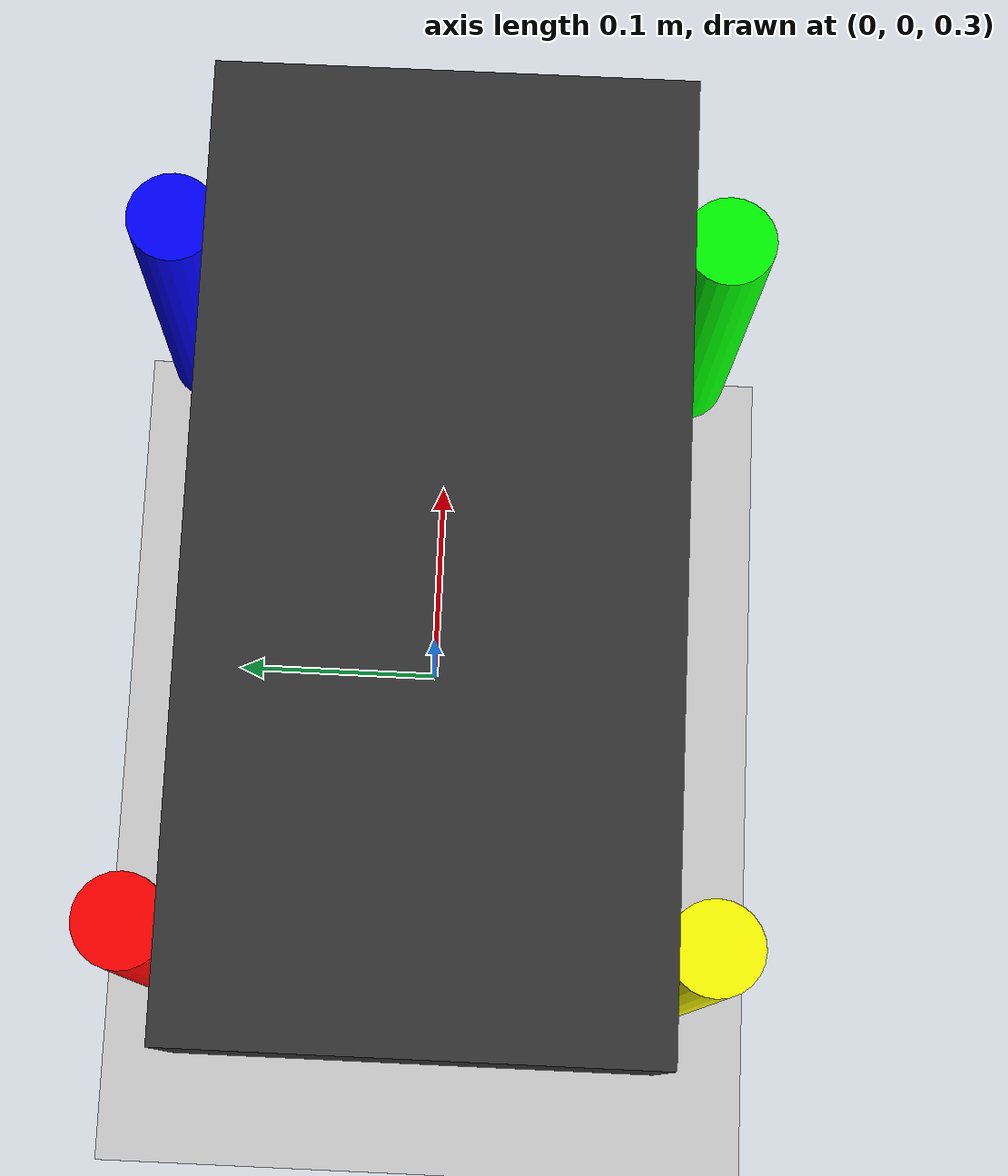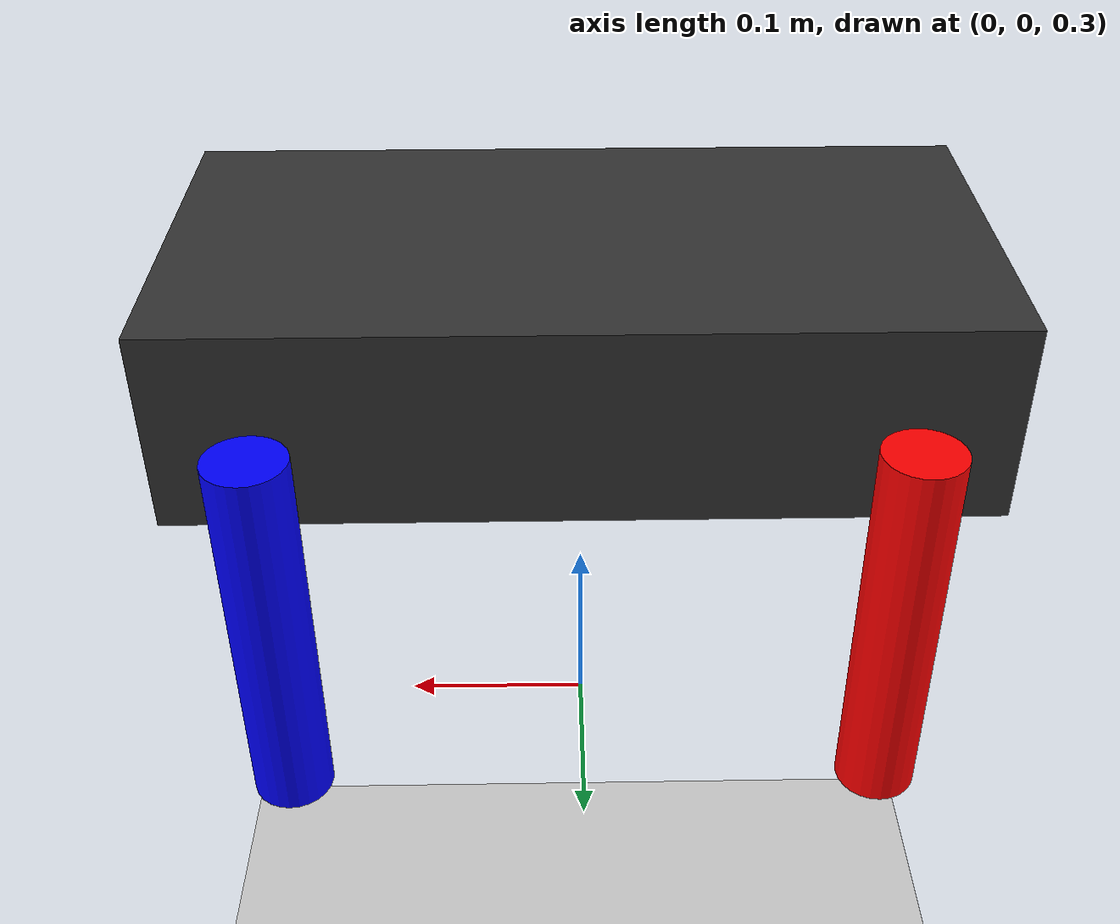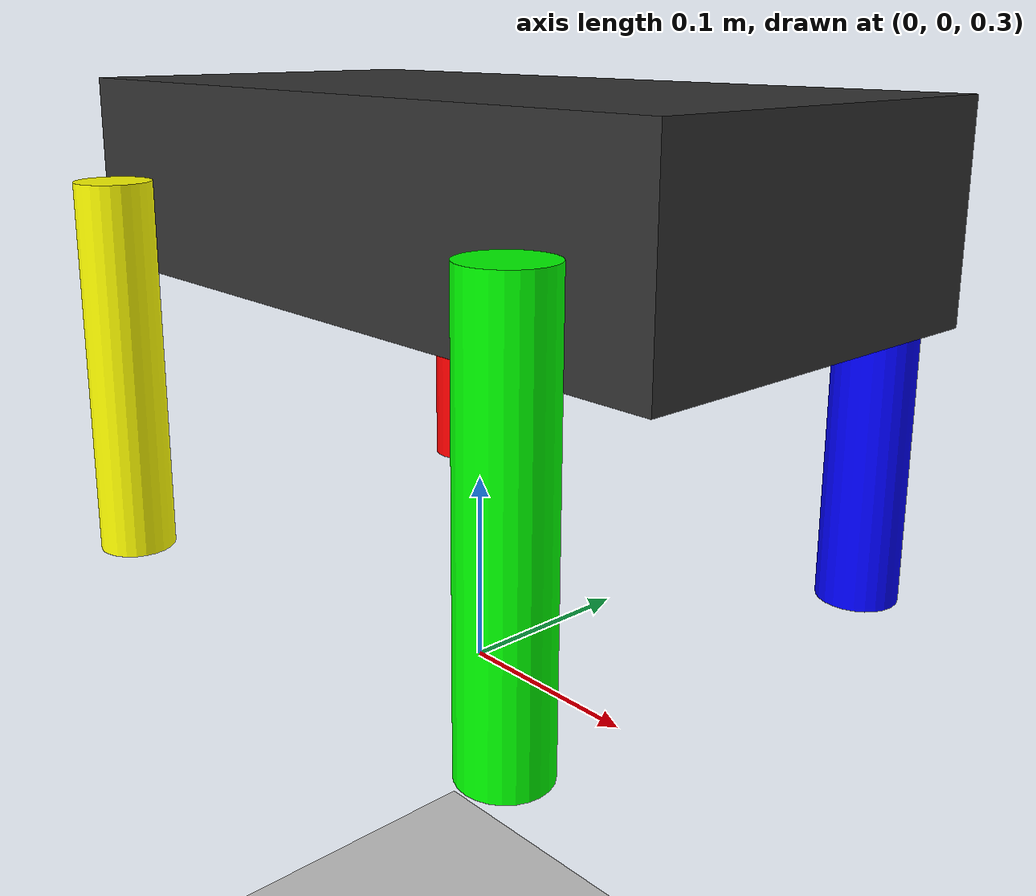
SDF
<sdf version="1.7">
 <world name="world_dog">
  <physics name="1ms" type="ignored">
   <max_step_size>0.001</max_step_size>
   <real_time_factor>10.0</real_time_factor>
  </physics>
  <plugin filename="gz-sim-physics-system" name="gz::sim::systems::Physics"/>
  <plugin filename="gz-sim-user-commands-system" name="gz::sim::systems::UserCommands"/>
  <plugin filename="gz-sim-scene-broadcaster-system" name="gz::sim::systems::SceneBroadcaster"/>
  <light type="directional" name="sun">
   <pose>0 0 10 0 0 0</pose>
   <diffuse>0.8 0.8 0.8 1</diffuse>
   <specular>0.2 0.2 0.2 1</specular>
   <direction>-0.5 0.1 -0.9</direction>
  </light>
  <model name="ground_plane">
   <static>true</static>
   <link name="link">
    <collision name="collision">
     <geometry><plane><normal>0 0 1</normal><size>100 100</size></plane></geometry>
    </collision>
    <visual name="visual">
     <geometry><plane><normal>0 0 1</normal><size>100 100</size></plane></geometry>
     <material><ambient>0.8 0.8 0.8 1</ambient><diffuse>0.8 0.8 0.8 1</diffuse></material>
    </visual>
   </link>
  </model>
  <include>
   <uri>model://robot_dog</uri>
   <pose>0 0 0.4 0 0 0</pose>
   <plugin filename="gz-sim-joint-state-publisher-system" name="gz::sim::systems::JointStatePublisher">
    <topic>/model/robot_dog/joint_state</topic>
   </plugin>
  </include>
 </world>
</sdf>

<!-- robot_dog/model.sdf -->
<sdf version="1.7">
  <model name="robot_dog">
    <static>false</static>

    <link name="base_link">
      <pose>0 0 0.15 0 0 0</pose>
      <inertial>
        <mass>3.0</mass>
        <inertia>
          <ixx>0.02</ixx><iyy>0.08</iyy><izz>0.09</izz>
          <ixy>0</ixy><ixz>0</ixz><iyz>0</iyz>
        </inertia>
      </inertial>
      <visual name="base_vis">
        <geometry><box><size>0.4 0.2 0.1</size></box></geometry>
        <material><ambient>0.2 0.2 0.2 1</ambient><diffuse>0.2 0.2 0.2 1</diffuse></material>
      </visual>
      <collision name="base_col">
        <geometry><box><size>0.4 0.2 0.1</size></box></geometry>
      </collision>
    </link>

    <!-- Front Left -->
    <joint name="joint_fl" type="revolute">
      <pose relative_to="base_link">0.15 0.12 0 0 0 0</pose>
      <parent>base_link</parent>
      <child>leg_fl</child>
      <axis>
        <xyz>0 1 0</xyz>
        <limit><lower>-1.57</lower><upper>1.57</upper><effort>100.0</effort><velocity>5.0</velocity></limit>
        <dynamics><damping>2.0</damping><friction>1.0</friction></dynamics>
      </axis>
    </joint>
    <link name="leg_fl">
      <pose relative_to="joint_fl">0 0 -0.1 0 0 0</pose>
      <inertial><mass>0.5</mass><inertia><ixx>0.002</ixx><iyy>0.002</iyy><izz>0.0001</izz></inertia></inertial>
      <visual name="vis_fl"><geometry><cylinder><radius>0.02</radius><length>0.2</length></cylinder></geometry><material><ambient>0 0 1 1</ambient></material></visual>
      <collision name="col_fl">
        <geometry><cylinder><radius>0.02</radius><length>0.2</length></cylinder></geometry>
        <surface><friction><ode><mu>1.5</mu><mu2>1.5</mu2></ode></friction></surface>
      </collision>
    </link>

    <!-- Front Right -->
    <joint name="joint_fr" type="revolute">
      <pose relative_to="base_link">0.15 -0.12 0 0 0 0</pose>
      <parent>base_link</parent><child>leg_fr</child>
      <axis>
        <xyz>0 1 0</xyz>
        <limit><lower>-1.57</lower><upper>1.57</upper><effort>100.0</effort><velocity>5.0</velocity></limit>
        <dynamics><damping>2.0</damping><friction>1.0</friction></dynamics>
      </axis>
    </joint>
    <link name="leg_fr">
      <pose relative_to="joint_fr">0 0 -0.1 0 0 0</pose>
      <inertial><mass>0.5</mass><inertia><ixx>0.002</ixx><iyy>0.002</iyy><izz>0.0001</izz></inertia></inertial>
      <visual name="vis_fr"><geometry><cylinder><radius>0.02</radius><length>0.2</length></cylinder></geometry><material><ambient>0 1 0 1</ambient></material></visual>
      <collision name="col_fr">
        <geometry><cylinder><radius>0.02</radius><length>0.2</length></cylinder></geometry>
        <surface><friction><ode><mu>1.5</mu><mu2>1.5</mu2></ode></friction></surface>
      </collision>
    </link>

    <!-- Back Left -->
    <joint name="joint_bl" type="revolute">
      <pose relative_to="base_link">-0.15 0.12 0 0 0 0</pose>
      <parent>base_link</parent><child>leg_bl</child>
      <axis>
        <xyz>0 1 0</xyz>
        <limit><lower>-1.57</lower><upper>1.57</upper><effort>100.0</effort><velocity>5.0</velocity></limit>
        <dynamics><damping>2.0</damping><friction>1.0</friction></dynamics>
      </axis>
    </joint>
    <link name="leg_bl">
      <pose relative_to="joint_bl">0 0 -0.1 0 0 0</pose>
      <inertial><mass>0.5</mass><inertia><ixx>0.002</ixx><iyy>0.002</iyy><izz>0.0001</izz></inertia></inertial>
      <visual name="vis_bl"><geometry><cylinder><radius>0.02</radius><length>0.2</length></cylinder></geometry><material><ambient>1 0 0 1</ambient></material></visual>
      <collision name="col_bl">
        <geometry><cylinder><radius>0.02</radius><length>0.2</length></cylinder></geometry>
        <surface><friction><ode><mu>1.5</mu><mu2>1.5</mu2></ode></friction></surface>
      </collision>
    </link>

    <!-- Back Right -->
    <joint name="joint_br" type="revolute">
      <pose relative_to="base_link">-0.15 -0.12 0 0 0 0</pose>
      <parent>base_link</parent><child>leg_br</child>
      <axis>
        <xyz>0 1 0</xyz>
        <limit><lower>-1.57</lower><upper>1.57</upper><effort>100.0</effort><velocity>5.0</velocity></limit>
        <dynamics><damping>2.0</damping><friction>1.0</friction></dynamics>
      </axis>
    </joint>
    <link name="leg_br">
      <pose relative_to="joint_br">0 0 -0.1 0 0 0</pose>
      <inertial><mass>0.5</mass><inertia><ixx>0.002</ixx><iyy>0.002</iyy><izz>0.0001</izz></inertia></inertial>
      <visual name="vis_br"><geometry><cylinder><radius>0.02</radius><length>0.2</length></cylinder></geometry><material><ambient>1 1 0 1</ambient></material></visual>
      <collision name="col_br">
        <geometry><cylinder><radius>0.02</radius><length>0.2</length></cylinder></geometry>
        <surface><friction><ode><mu>1.5</mu><mu2>1.5</mu2></ode></friction></surface>
      </collision>
    </link>

    <plugin filename="gz-sim-joint-position-controller-system" name="gz::sim::systems::JointPositionController">
      <joint_name>joint_fl</joint_name>
      <joint_name>joint_fr</joint_name>
      <joint_name>joint_bl</joint_name>
      <joint_name>joint_br</joint_name>
      <p_gain>5000.0</p_gain>
      <i_gain>10.0</i_gain>
      <d_gain>100.0</d_gain>
      <cmd_max>100.0</cmd_max>
      <cmd_min>-100.0</cmd_min>
    </plugin>
  </model>
</sdf>
